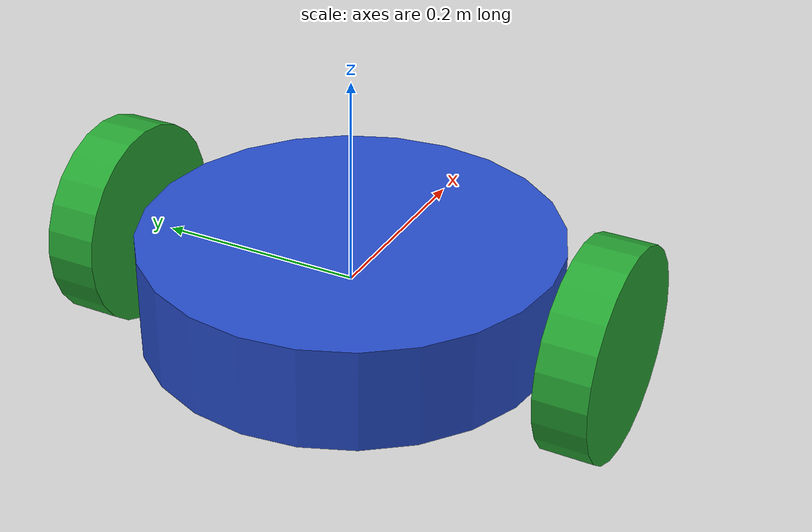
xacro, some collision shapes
<?xml version='1.0'?>

<robot name="circle_bot_slam" xmlns:xacro="http://www.ros.org/wiki/xacro">
  <xacro:include filename="$(find udacity_bot)/urdf/circle_bot_slam.gazebo" />
  <link name="robot_footprint"></link>

  <joint name="robot_footprint_joint" type="fixed">
    <origin xyz="0 0 0" rpy="0 0 0" />
    <parent link="robot_footprint"/>
    <child link="chassis" />
  </joint>

  <joint type="fixed" name="camera_joint">
    <origin xyz="0.2 0 0" rpy="0 0 0"/>
    <child link="camera"/>
    <parent link="chassis"/>
  </joint>

 <link name='camera'>
    <inertial>
      <mass value="0.56"/>
      <inertia
          ixx="0.004" ixy="0" ixz="0"
          iyy="0.0005" iyz="0"
          izz="0.004"
      />
    </inertial>
    <collision name='camera_collision'>
      <origin xyz="0.0 0 0" rpy="0 0 0"/>
      <geometry>
        <box size="0.025 0.090 0.025"/>
      </geometry>
    </collision>
    <visual name='camera_visual'>
      <origin xyz="0.0 0 0" rpy="0 0 0"/>
      <geometry>
        <mesh filename="package://udacity_bot/meshes/realsense.dae" />
      </geometry>
    </visual>
  </link>

  <joint type="continuous" name="left_wheel_hinge">
    <origin xyz="0 0.25 0" rpy="0 0 0"/>
    <child link="left_wheel"/>
    <parent link="chassis"/>
    <axis xyz="0 1 0" rpy="0 0 0"/>
    <limit effort="10000" velocity="1000"/>
    <dynamics damping="1.0" friction="1.0"/>
  </joint>

 <link name='left_wheel'>
    <inertial>
      <mass value="5.0"/>
      <origin xyz="0.0 0 0" rpy="0 1.5707 1.5707"/>
      <inertia
          ixx="0.1" ixy="0" ixz="0"
          iyy="0.1" iyz="0"
          izz="0.1"
      />
    </inertial>

    <collision name='left_wheel_collision'>
      <origin xyz="0 0 0" rpy="0 1.5707 1.5707"/>
      <geometry>
        <cylinder radius="0.1" length="0.05"/>
      </geometry>
    </collision>

    <visual name='left_wheel_visual'>
      <origin xyz="0 0 0" rpy="0 1.5707 1.5707"/>
      <geometry>
        <cylinder radius="0.1" length="0.05"/>
      </geometry>
    </visual>

  </link>

  <joint type="continuous" name="right_wheel_hinge">
    <origin xyz="0 -0.25 0" rpy="0 0 0"/>
    <child link="right_wheel"/>
    <parent link="chassis"/>
    <axis xyz="0 1 0" rpy="0 0 0"/>
    <limit effort="10000" velocity="1000"/>
    <dynamics damping="1.0" friction="1.0"/>
  </joint>

 <link name='right_wheel'>
    <inertial>
      <mass value="5.0"/>
      <origin xyz="0.0 0 0" rpy="0 1.5707 1.5707"/>
      <inertia
          ixx="0.1" ixy="0" ixz="0"
          iyy="0.1" iyz="0"
          izz="0.1"
      />
    </inertial>

    <collision name='right_wheel_collision'>
      <origin xyz="0 0 0" rpy="0 1.5707 1.5707"/>
      <geometry>
        <cylinder radius="0.1" length="0.05"/>
      </geometry>
    </collision>

    <visual name='right_wheel_visual'>
      <origin xyz="0 0 0" rpy="0 1.5707 1.5707"/>
      <geometry>
        <cylinder radius="0.1" length="0.05"/>
      </geometry>
    </visual>

  </link>

  <link name='chassis'>
    <pose>0 0 0.1 0 0 0</pose>
    <inertial>
      <mass value="15.0"/>
      <origin xyz="0.0 0 0" rpy=" 0 0 0"/>
      <inertia
          ixx="0.1" ixy="0" ixz="0"
          iyy="0.1" iyz="0"
          izz="0.1"
      />
    </inertial>

    <collision name='collision'>
      <origin xyz="0 0 0" rpy=" 0 0 0"/>
      <geometry>
        <cylinder radius=".2" length=".1"/>
      </geometry>
    </collision>

    <visual name='chassis_visual'>
      <origin xyz="0 0 0" rpy=" 0 0 0"/>
      <geometry>
        <cylinder radius=".2" length=".1"/>
      </geometry>
    </visual>

    <collision name='back_caster_collision'>
      <origin xyz="-0.12 0 -0.05" rpy=" 0 0 0"/>
      <geometry>
        <sphere radius="0.0499"/>
      </geometry>
    </collision>

    <visual name='back_caster_visual'>
      <origin xyz="-0.12 0 -0.05" rpy=" 0 0 0"/>
      <geometry>
        <sphere radius="0.05"/>
      </geometry>
    </visual>

    <collision name='front_caster_collision'>
      <origin xyz="0.12 0 -0.05" rpy=" 0 0 0"/>
      <geometry>
        <sphere radius="0.0499"/>
      </geometry>
    </collision>

    <visual name='front_caster_visual'>
      <origin xyz="0.12 0 -0.05" rpy=" 0 0 0"/>
      <geometry>
        <sphere radius="0.05"/>
      </geometry>
    </visual>

  </link>

</robot>
